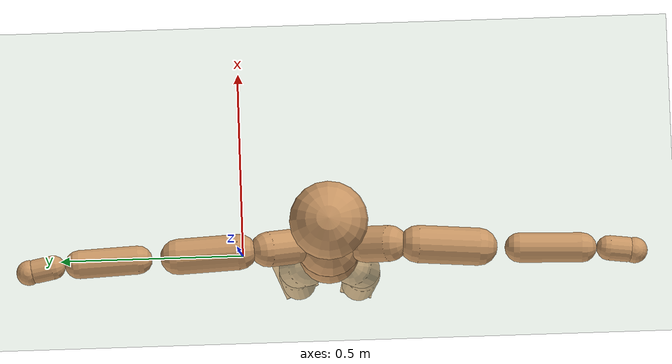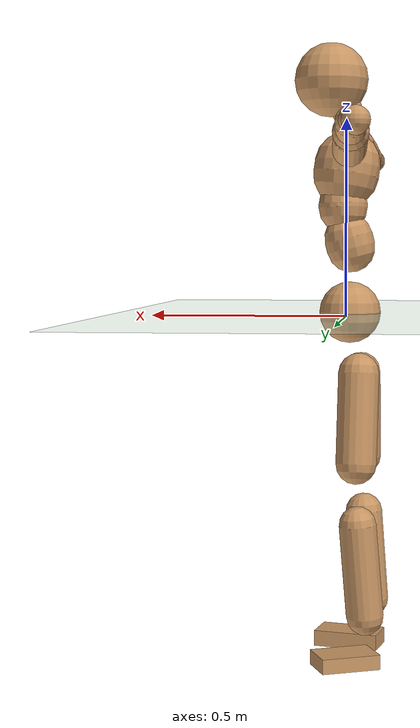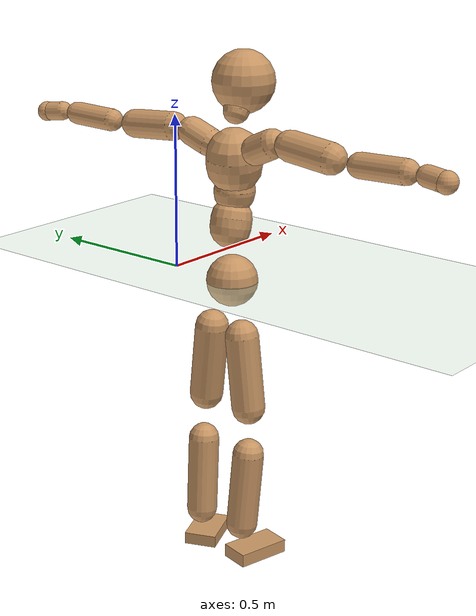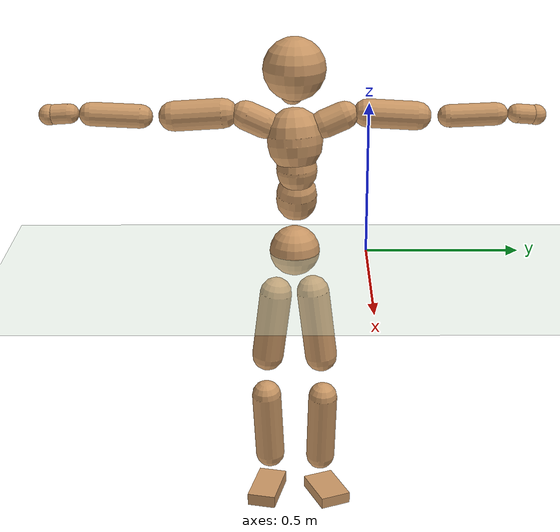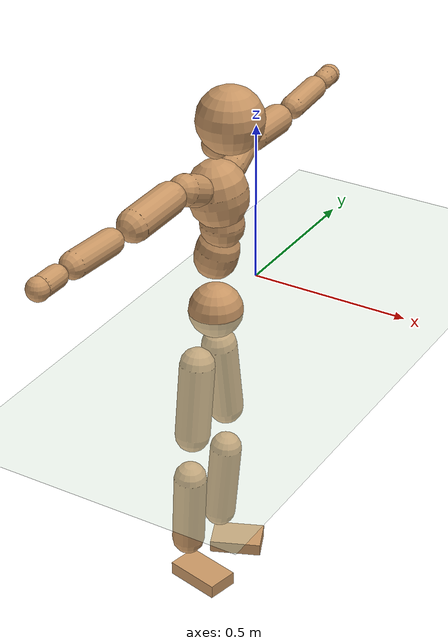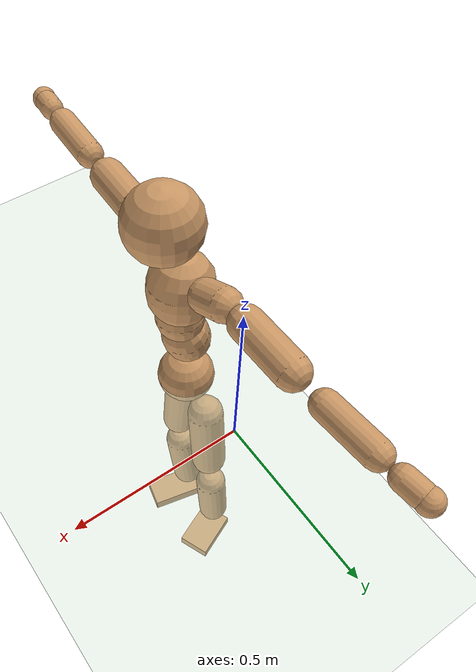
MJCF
<mujoco model="humanoid">
  <compiler coordinate="local" angle="radian"/>
  <default>
    <joint damping="0.0" armature="0.01" stiffness="0.0" limited="true"/>
    <geom conaffinity="1" condim="3" contype="7" margin="0.001" rgba="0.8 0.6 .4 1"/>
  </default>
  <asset>
    <texture type="skybox" builtin="gradient" rgb1=".4 .5 .6" rgb2="0 0 0" width="100" height="100"/>
    <texture builtin="flat" height="1278" mark="cross" markrgb="1 1 1" name="texgeom" random="0.01" rgb1="0.8 0.6 0.4" rgb2="0.8 0.6 0.4" type="cube" width="127"/>
    <texture builtin="checker" height="100" name="texplane" rgb1="0 0 0" rgb2="0.8 0.8 0.8" type="2d" width="100"/>
    <material name="MatPlane" reflectance="0.5" shininess="1" specular="1" texrepeat="60 60" texture="texplane"/>
    <material name="geom" texture="texgeom" texuniform="true"/>
  </asset>
  <worldbody>
    <light cutoff="100" diffuse="1 1 1" dir="-0 0 -1.3" directional="true" exponent="1" pos="0 0 1.3" specular=".1 .1 .1"/>
    <geom conaffinity="1" condim="3" name="floor" pos="0 0 0" rgba="0.8 0.9 0.8 1" size="100 100 .2" type="plane" material="MatPlane"/>
    <body name="Pelvis" pos="0.0006 -0.2349 0.0005">
      <freejoint name="Pelvis"/>
      <geom type="sphere" contype="1" conaffinity="1" density="500" size="0.0829" pos="0.0000 0.0000 0.0000" name="Pelvis"/>
      <body name="L_Hip" pos="-0.0286 0.0517 -0.0809">
        <joint name="L_Hip_x" type="hinge" pos="0 0 0" axis="1 0 0" stiffness="800" damping="80" armature="0.02" range="-180.0000 180.0000"/>
        <joint name="L_Hip_y" type="hinge" pos="0 0 0" axis="0 1 0" stiffness="800" damping="80" armature="0.02" range="-180.0000 180.0000"/>
        <joint name="L_Hip_z" type="hinge" pos="0 0 0" axis="0 0 1" stiffness="800" damping="80" armature="0.02" range="-180.0000 180.0000"/>
        <geom type="capsule" contype="1" conaffinity="1" density="500" fromto="0.0016 0.0097 -0.0802 0.0063 0.0388 -0.3209" size="0.0547" name="L_Hip"/>
        <body name="L_Knee" pos="0.0079 0.0485 -0.4011">
          <joint name="L_Knee_x" type="hinge" pos="0 0 0" axis="1 0 0" stiffness="800" damping="80" armature="0.02" range="-180.0000 180.0000"/>
          <joint name="L_Knee_y" type="hinge" pos="0 0 0" axis="0 1 0" stiffness="800" damping="80" armature="0.02" range="-180.0000 180.0000"/>
          <joint name="L_Knee_z" type="hinge" pos="0 0 0" axis="0 0 1" stiffness="800" damping="80" armature="0.02" range="-180.0000 180.0000"/>
          <geom type="capsule" contype="1" conaffinity="1" density="500" fromto="-0.0067 -0.0023 -0.0831 -0.0269 -0.0093 -0.3323" size="0.0502" name="L_Knee"/>
          <body name="L_Ankle" pos="-0.0336 -0.0116 -0.4154">
            <joint name="L_Ankle_x" type="hinge" pos="0 0 0" axis="1 0 0" stiffness="800" damping="80" armature="0.02" range="-180.0000 180.0000"/>
            <joint name="L_Ankle_y" type="hinge" pos="0 0 0" axis="0 1 0" stiffness="800" damping="80" armature="0.02" range="-180.0000 180.0000"/>
            <joint name="L_Ankle_z" type="hinge" pos="0 0 0" axis="0 0 1" stiffness="800" damping="80" armature="0.02" range="-180.0000 180.0000"/>
            <geom type="box" contype="1" conaffinity="1" density="500" pos="0.0586 0.0247 -0.0301" size="0.0809 0.0534 0.0198" quat="0.9802 0.0000 0.0000 0.1982" name="L_Ankle"/>
            <body name="L_Toe" pos="0.1172 0.0494 -0.0602">
              <joint name="L_Toe_x" type="hinge" pos="0 0 0" axis="1 0 0" stiffness="500" damping="50" armature="0.02" range="-180.0000 180.0000"/>
              <joint name="L_Toe_y" type="hinge" pos="0 0 0" axis="0 1 0" stiffness="500" damping="50" armature="0.02" range="-180.0000 180.0000"/>
              <joint name="L_Toe_z" type="hinge" pos="0 0 0" axis="0 0 1" stiffness="500" damping="50" armature="0.02" range="-180.0000 180.0000"/>
              <geom type="box" contype="1" conaffinity="1" density="500" pos="0.0000 0.0000 0.0325" size="0.001 0.0025 0.0011" quat="0.9793 0.0000 0.0000 0.2023" name="L_Toe"/>
            </body>
          </body>
        </body>
      </body>
      <body name="R_Hip" pos="-0.0269 -0.0539 -0.0886">
        <joint name="R_Hip_x" type="hinge" pos="0 0 0" axis="1 0 0" stiffness="800" damping="80" armature="0.02" range="-180.0000 180.0000"/>
        <joint name="R_Hip_y" type="hinge" pos="0 0 0" axis="0 1 0" stiffness="800" damping="80" armature="0.02" range="-180.0000 180.0000"/>
        <joint name="R_Hip_z" type="hinge" pos="0 0 0" axis="0 0 1" stiffness="800" damping="80" armature="0.02" range="-180.0000 180.0000"/>
        <geom type="capsule" contype="1" conaffinity="1" density="500" fromto="-0.0007 -0.0098 -0.0785 -0.0028 -0.0394 -0.3140" size="0.0541" name="R_Hip"/>
        <body name="R_Knee" pos="-0.0035 -0.0492 -0.3925">
          <joint name="R_Knee_x" type="hinge" pos="0 0 0" axis="1 0 0" stiffness="800" damping="80" armature="0.02" range="-180.0000 180.0000"/>
          <joint name="R_Knee_y" type="hinge" pos="0 0 0" axis="0 1 0" stiffness="800" damping="80" armature="0.02" range="-180.0000 180.0000"/>
          <joint name="R_Knee_z" type="hinge" pos="0 0 0" axis="0 0 1" stiffness="800" damping="80" armature="0.02" range="-180.0000 180.0000"/>
          <geom type="capsule" contype="1" conaffinity="1" density="500" fromto="-0.0061 0.0036 -0.0818 -0.0246 0.0143 -0.3274" size="0.0511" name="R_Knee"/>
          <body name="R_Ankle" pos="-0.0307 0.0179 -0.4092">
            <joint name="R_Ankle_x" type="hinge" pos="0 0 0" axis="1 0 0" stiffness="800" damping="80" armature="0.02" range="-180.0000 180.0000"/>
            <joint name="R_Ankle_y" type="hinge" pos="0 0 0" axis="0 1 0" stiffness="800" damping="80" armature="0.02" range="-180.0000 180.0000"/>
            <joint name="R_Ankle_z" type="hinge" pos="0 0 0" axis="0 0 1" stiffness="800" damping="80" armature="0.02" range="-180.0000 180.0000"/>
            <geom type="box" contype="1" conaffinity="1" density="500" pos="0.0636 -0.0145 -0.0320" size="0.0888 0.0487 0.0217" quat="0.9937 0.0000 0.0000 -0.1117" name="R_Ankle"/>
            <body name="R_Toe" pos="0.1272 -0.029 -0.064">
              <joint name="R_Toe_x" type="hinge" pos="0 0 0" axis="1 0 0" stiffness="500" damping="50" armature="0.02" range="-180.0000 180.0000"/>
              <joint name="R_Toe_y" type="hinge" pos="0 0 0" axis="0 1 0" stiffness="500" damping="50" armature="0.02" range="-180.0000 180.0000"/>
              <joint name="R_Toe_z" type="hinge" pos="0 0 0" axis="0 0 1" stiffness="500" damping="50" armature="0.02" range="-180.0000 180.0000"/>
              <geom type="box" contype="1" conaffinity="1" density="500" pos="0.0000 0.0000 0.0345" size="0.0009 0.0023 0.0012" quat="0.9947 0.0000 0.0000 -0.1026" name="R_Toe"/>
            </body>
          </body>
        </body>
      </body>
      <body name="Torso" pos="-0.0166 0.004 0.1172">
        <joint name="Torso_x" type="hinge" pos="0 0 0" axis="1 0 0" stiffness="1000" damping="100" armature="0.02" range="-180.0000 180.0000"/>
        <joint name="Torso_y" type="hinge" pos="0 0 0" axis="0 1 0" stiffness="1000" damping="100" armature="0.02" range="-180.0000 180.0000"/>
        <joint name="Torso_z" type="hinge" pos="0 0 0" axis="0 0 1" stiffness="1000" damping="100" armature="0.02" range="-180.0000 180.0000"/>
        <geom type="capsule" contype="1" conaffinity="1" density="500" fromto="0.0214 0.0026 0.0846 0.0143 0.0017 0.0564" size="0.0657" name="Torso"/>
        <body name="Spine" pos="0.0357 0.0043 0.1411">
          <joint name="Spine_x" type="hinge" pos="0 0 0" axis="1 0 0" stiffness="1000" damping="100" armature="0.02" range="-180.0000 180.0000"/>
          <joint name="Spine_y" type="hinge" pos="0 0 0" axis="0 1 0" stiffness="1000" damping="100" armature="0.02" range="-180.0000 180.0000"/>
          <joint name="Spine_z" type="hinge" pos="0 0 0" axis="0 0 1" stiffness="1000" damping="100" armature="0.02" range="-180.0000 180.0000"/>
          <geom type="capsule" contype="1" conaffinity="1" density="500" fromto="0.0006 -0.0016 0.0341 0.0004 -0.0011 0.0227" size="0.0657" name="Spine"/>
          <body name="Chest" pos="0.001 -0.0027 0.0568">
            <joint name="Chest_x" type="hinge" pos="0 0 0" axis="1 0 0" stiffness="1000" damping="100" armature="0.02" range="-180.0000 180.0000"/>
            <joint name="Chest_y" type="hinge" pos="0 0 0" axis="0 1 0" stiffness="1000" damping="100" armature="0.02" range="-180.0000 180.0000"/>
            <joint name="Chest_z" type="hinge" pos="0 0 0" axis="0 0 1" stiffness="1000" damping="100" armature="0.02" range="-180.0000 180.0000"/>
            <geom type="capsule" contype="1" conaffinity="1" density="500" fromto="-0.0119 -0.0055 0.0841 -0.0080 -0.0037 0.0561" size="0.0889" name="Chest"/>
            <body name="Neck" pos="-0.0212 -0.014 0.2053">
              <joint name="Neck_x" type="hinge" pos="0 0 0" axis="1 0 0" stiffness="500" damping="50" armature="0.02" range="-180.0000 180.0000"/>
              <joint name="Neck_y" type="hinge" pos="0 0 0" axis="0 1 0" stiffness="500" damping="50" armature="0.02" range="-180.0000 180.0000"/>
              <joint name="Neck_z" type="hinge" pos="0 0 0" axis="0 0 1" stiffness="500" damping="50" armature="0.02" range="-180.0000 180.0000"/>
              <geom type="capsule" contype="1" conaffinity="1" density="500" fromto="0.0107 0.0016 0.0206 0.0427 0.0065 0.0825" size="0.0415" name="Neck"/>
              <body name="Head" pos="0.0534 0.0081 0.1031">
                <joint name="Head_x" type="hinge" pos="0 0 0" axis="1 0 0" stiffness="500" damping="50" armature="0.02" range="-180.0000 180.0000"/>
                <joint name="Head_y" type="hinge" pos="0 0 0" axis="0 1 0" stiffness="500" damping="50" armature="0.02" range="-180.0000 180.0000"/>
                <joint name="Head_z" type="hinge" pos="0 0 0" axis="0 0 1" stiffness="500" damping="50" armature="0.02" range="-180.0000 180.0000"/>
                <geom type="sphere" contype="1" conaffinity="1" density="500" size="0.0991" pos="0.0000 0.0000 0.0000" name="Head"/>
              </body>
            </body>
            <body name="L_Thorax" pos="-0.0181 0.0643 0.1074">
              <joint name="L_Thorax_x" type="hinge" pos="0 0 0" axis="1 0 0" stiffness="500" damping="50" armature="0.02" range="-180.0000 180.0000"/>
              <joint name="L_Thorax_y" type="hinge" pos="0 0 0" axis="0 1 0" stiffness="500" damping="50" armature="0.02" range="-180.0000 180.0000"/>
              <joint name="L_Thorax_z" type="hinge" pos="0 0 0" axis="0 0 1" stiffness="500" damping="50" armature="0.02" range="-180.0000 180.0000"/>
              <geom type="capsule" contype="1" conaffinity="1" density="500" fromto="-0.0023 0.0218 0.0091 -0.0093 0.0874 0.0366" size="0.0456" name="L_Thorax"/>
              <body name="L_Shoulder" pos="-0.0116 0.1092 0.0457">
                <joint name="L_Shoulder_x" type="hinge" pos="0 0 0" axis="1 0 0" stiffness="500" damping="50" armature="0.02" range="-720.0000 720.0000"/>
                <joint name="L_Shoulder_y" type="hinge" pos="0 0 0" axis="0 1 0" stiffness="500" damping="50" armature="0.02" range="-720.0000 720.0000"/>
                <joint name="L_Shoulder_z" type="hinge" pos="0 0 0" axis="0 0 1" stiffness="500" damping="50" armature="0.02" range="-720.0000 720.0000"/>
                <geom type="capsule" contype="1" conaffinity="1" density="500" fromto="-0.0023 0.0523 -0.0036 -0.0092 0.2093 -0.0144" size="0.046" name="L_Shoulder"/>
                <body name="L_Elbow" pos="-0.0115 0.2616 -0.018">
                  <joint name="L_Elbow_x" type="hinge" pos="0 0 0" axis="1 0 0" stiffness="500" damping="50" armature="0.02" range="-720.0000 720.0000"/>
                  <joint name="L_Elbow_y" type="hinge" pos="0 0 0" axis="0 1 0" stiffness="500" damping="50" armature="0.02" range="-720.0000 720.0000"/>
                  <joint name="L_Elbow_z" type="hinge" pos="0 0 0" axis="0 0 1" stiffness="500" damping="50" armature="0.02" range="-720.0000 720.0000"/>
                  <geom type="capsule" contype="1" conaffinity="1" density="500" fromto="-0.0024 0.0504 0.0016 -0.0097 0.2016 0.0066" size="0.0367" name="L_Elbow"/>
                  <body name="L_Wrist" pos="-0.0121 0.252 0.0082">
                    <joint name="L_Wrist_x" type="hinge" pos="0 0 0" axis="1 0 0" stiffness="300" damping="30" armature="0.02" range="-180.0000 180.0000"/>
                    <joint name="L_Wrist_y" type="hinge" pos="0 0 0" axis="0 1 0" stiffness="300" damping="30" armature="0.02" range="-180.0000 180.0000"/>
                    <joint name="L_Wrist_z" type="hinge" pos="0 0 0" axis="0 0 1" stiffness="300" damping="30" armature="0.02" range="-180.0000 180.0000"/>
                    <geom type="capsule" contype="1" conaffinity="1" density="500" fromto="-0.0029 0.0159 -0.0019 -0.0116 0.0635 -0.0076" size="0.031" name="L_Wrist"/>
                    <body name="L_Hand" pos="-0.0145 0.0794 -0.0095">
                      <joint name="L_Hand_x" type="hinge" pos="0 0 0" axis="1 0 0" stiffness="300" damping="30" armature="0.02" range="-180.0000 180.0000"/>
                      <joint name="L_Hand_y" type="hinge" pos="0 0 0" axis="0 1 0" stiffness="300" damping="30" armature="0.02" range="-180.0000 180.0000"/>
                      <joint name="L_Hand_z" type="hinge" pos="0 0 0" axis="0 0 1" stiffness="300" damping="30" armature="0.02" range="-180.0000 180.0000"/>
                      <geom type="sphere" contype="1" conaffinity="1" density="500" size="0.0326" pos="0.0000 0.0000 0.0000" name="L_Hand"/>
                    </body>
                  </body>
                </body>
              </body>
            </body>
            <body name="R_Thorax" pos="-0.0205 -0.078 0.1078">
              <joint name="R_Thorax_x" type="hinge" pos="0 0 0" axis="1 0 0" stiffness="500" damping="50" armature="0.02" range="-180.0000 180.0000"/>
              <joint name="R_Thorax_y" type="hinge" pos="0 0 0" axis="0 1 0" stiffness="500" damping="50" armature="0.02" range="-180.0000 180.0000"/>
              <joint name="R_Thorax_z" type="hinge" pos="0 0 0" axis="0 0 1" stiffness="500" damping="50" armature="0.02" range="-180.0000 180.0000"/>
              <geom type="capsule" contype="1" conaffinity="1" density="500" fromto="-0.0004 -0.0206 0.0094 -0.0016 -0.0825 0.0377" size="0.0469" name="R_Thorax"/>
              <body name="R_Shoulder" pos="-0.002 -0.1032 0.0472">
                <joint name="R_Shoulder_x" type="hinge" pos="0 0 0" axis="1 0 0" stiffness="500" damping="50" armature="0.02" range="-720.0000 720.0000"/>
                <joint name="R_Shoulder_y" type="hinge" pos="0 0 0" axis="0 1 0" stiffness="500" damping="50" armature="0.02" range="-720.0000 720.0000"/>
                <joint name="R_Shoulder_z" type="hinge" pos="0 0 0" axis="0 0 1" stiffness="500" damping="50" armature="0.02" range="-720.0000 720.0000"/>
                <geom type="capsule" contype="1" conaffinity="1" density="500" fromto="-0.0037 -0.0520 -0.0043 -0.0149 -0.2081 -0.0172" size="0.0485" name="R_Shoulder"/>
                <body name="R_Elbow" pos="-0.0187 -0.2602 -0.0215">
                  <joint name="R_Elbow_x" type="hinge" pos="0 0 0" axis="1 0 0" stiffness="500" damping="50" armature="0.02" range="-720.0000 720.0000"/>
                  <joint name="R_Elbow_y" type="hinge" pos="0 0 0" axis="0 1 0" stiffness="500" damping="50" armature="0.02" range="-720.0000 720.0000"/>
                  <joint name="R_Elbow_z" type="hinge" pos="0 0 0" axis="0 0 1" stiffness="500" damping="50" armature="0.02" range="-720.0000 720.0000"/>
                  <geom type="capsule" contype="1" conaffinity="1" density="500" fromto="-0.0016 -0.0529 0.0021 -0.0066 -0.2118 0.0084" size="0.0384" name="R_Elbow"/>
                  <body name="R_Wrist" pos="-0.0082 -0.2647 0.0104">
                    <joint name="R_Wrist_x" type="hinge" pos="0 0 0" axis="1 0 0" stiffness="300" damping="30" armature="0.02" range="-180.0000 180.0000"/>
                    <joint name="R_Wrist_y" type="hinge" pos="0 0 0" axis="0 1 0" stiffness="300" damping="30" armature="0.02" range="-180.0000 180.0000"/>
                    <joint name="R_Wrist_z" type="hinge" pos="0 0 0" axis="0 0 1" stiffness="300" damping="30" armature="0.02" range="-180.0000 180.0000"/>
                    <geom type="capsule" contype="1" conaffinity="1" density="500" fromto="-0.0019 -0.0166 -0.0015 -0.0076 -0.0662 -0.0061" size="0.0322" name="R_Wrist"/>
                    <body name="R_Hand" pos="-0.0095 -0.0828 -0.0076">
                      <joint name="R_Hand_x" type="hinge" pos="0 0 0" axis="1 0 0" stiffness="300" damping="30" armature="0.02" range="-180.0000 180.0000"/>
                      <joint name="R_Hand_y" type="hinge" pos="0 0 0" axis="0 1 0" stiffness="300" damping="30" armature="0.02" range="-180.0000 180.0000"/>
                      <joint name="R_Hand_z" type="hinge" pos="0 0 0" axis="0 0 1" stiffness="300" damping="30" armature="0.02" range="-180.0000 180.0000"/>
                      <geom type="sphere" contype="1" conaffinity="1" density="500" size="0.0336" pos="0.0000 0.0000 0.0000" name="R_Hand"/>
                    </body>
                  </body>
                </body>
              </body>
            </body>
          </body>
        </body>
      </body>
    </body>
  </worldbody>
  <actuator>
    <motor name="L_Hip_x" joint="L_Hip_x" gear="500"/>
    <motor name="L_Hip_y" joint="L_Hip_y" gear="500"/>
    <motor name="L_Hip_z" joint="L_Hip_z" gear="500"/>
    <motor name="L_Knee_x" joint="L_Knee_x" gear="500"/>
    <motor name="L_Knee_y" joint="L_Knee_y" gear="500"/>
    <motor name="L_Knee_z" joint="L_Knee_z" gear="500"/>
    <motor name="L_Ankle_x" joint="L_Ankle_x" gear="500"/>
    <motor name="L_Ankle_y" joint="L_Ankle_y" gear="500"/>
    <motor name="L_Ankle_z" joint="L_Ankle_z" gear="500"/>
    <motor name="L_Toe_x" joint="L_Toe_x" gear="500"/>
    <motor name="L_Toe_y" joint="L_Toe_y" gear="500"/>
    <motor name="L_Toe_z" joint="L_Toe_z" gear="500"/>
    <motor name="R_Hip_x" joint="R_Hip_x" gear="500"/>
    <motor name="R_Hip_y" joint="R_Hip_y" gear="500"/>
    <motor name="R_Hip_z" joint="R_Hip_z" gear="500"/>
    <motor name="R_Knee_x" joint="R_Knee_x" gear="500"/>
    <motor name="R_Knee_y" joint="R_Knee_y" gear="500"/>
    <motor name="R_Knee_z" joint="R_Knee_z" gear="500"/>
    <motor name="R_Ankle_x" joint="R_Ankle_x" gear="500"/>
    <motor name="R_Ankle_y" joint="R_Ankle_y" gear="500"/>
    <motor name="R_Ankle_z" joint="R_Ankle_z" gear="500"/>
    <motor name="R_Toe_x" joint="R_Toe_x" gear="500"/>
    <motor name="R_Toe_y" joint="R_Toe_y" gear="500"/>
    <motor name="R_Toe_z" joint="R_Toe_z" gear="500"/>
    <motor name="Torso_x" joint="Torso_x" gear="500"/>
    <motor name="Torso_y" joint="Torso_y" gear="500"/>
    <motor name="Torso_z" joint="Torso_z" gear="500"/>
    <motor name="Spine_x" joint="Spine_x" gear="500"/>
    <motor name="Spine_y" joint="Spine_y" gear="500"/>
    <motor name="Spine_z" joint="Spine_z" gear="500"/>
    <motor name="Chest_x" joint="Chest_x" gear="500"/>
    <motor name="Chest_y" joint="Chest_y" gear="500"/>
    <motor name="Chest_z" joint="Chest_z" gear="500"/>
    <motor name="Neck_x" joint="Neck_x" gear="500"/>
    <motor name="Neck_y" joint="Neck_y" gear="500"/>
    <motor name="Neck_z" joint="Neck_z" gear="500"/>
    <motor name="Head_x" joint="Head_x" gear="500"/>
    <motor name="Head_y" joint="Head_y" gear="500"/>
    <motor name="Head_z" joint="Head_z" gear="500"/>
    <motor name="L_Thorax_x" joint="L_Thorax_x" gear="500"/>
    <motor name="L_Thorax_y" joint="L_Thorax_y" gear="500"/>
    <motor name="L_Thorax_z" joint="L_Thorax_z" gear="500"/>
    <motor name="L_Shoulder_x" joint="L_Shoulder_x" gear="500"/>
    <motor name="L_Shoulder_y" joint="L_Shoulder_y" gear="500"/>
    <motor name="L_Shoulder_z" joint="L_Shoulder_z" gear="500"/>
    <motor name="L_Elbow_x" joint="L_Elbow_x" gear="500"/>
    <motor name="L_Elbow_y" joint="L_Elbow_y" gear="500"/>
    <motor name="L_Elbow_z" joint="L_Elbow_z" gear="500"/>
    <motor name="L_Wrist_x" joint="L_Wrist_x" gear="500"/>
    <motor name="L_Wrist_y" joint="L_Wrist_y" gear="500"/>
    <motor name="L_Wrist_z" joint="L_Wrist_z" gear="500"/>
    <motor name="L_Hand_x" joint="L_Hand_x" gear="500"/>
    <motor name="L_Hand_y" joint="L_Hand_y" gear="500"/>
    <motor name="L_Hand_z" joint="L_Hand_z" gear="500"/>
    <motor name="R_Thorax_x" joint="R_Thorax_x" gear="500"/>
    <motor name="R_Thorax_y" joint="R_Thorax_y" gear="500"/>
    <motor name="R_Thorax_z" joint="R_Thorax_z" gear="500"/>
    <motor name="R_Shoulder_x" joint="R_Shoulder_x" gear="500"/>
    <motor name="R_Shoulder_y" joint="R_Shoulder_y" gear="500"/>
    <motor name="R_Shoulder_z" joint="R_Shoulder_z" gear="500"/>
    <motor name="R_Elbow_x" joint="R_Elbow_x" gear="500"/>
    <motor name="R_Elbow_y" joint="R_Elbow_y" gear="500"/>
    <motor name="R_Elbow_z" joint="R_Elbow_z" gear="500"/>
    <motor name="R_Wrist_x" joint="R_Wrist_x" gear="500"/>
    <motor name="R_Wrist_y" joint="R_Wrist_y" gear="500"/>
    <motor name="R_Wrist_z" joint="R_Wrist_z" gear="500"/>
    <motor name="R_Hand_x" joint="R_Hand_x" gear="500"/>
    <motor name="R_Hand_y" joint="R_Hand_y" gear="500"/>
    <motor name="R_Hand_z" joint="R_Hand_z" gear="500"/>
  </actuator>
  <contact>
    <exclude body1="Torso" body2="Chest"/>
    <exclude body1="Head" body2="Chest"/>
    <exclude body1="R_Knee" body2="R_Toe"/>
    <exclude body1="R_Knee" body2="L_Ankle"/>
    <exclude body1="R_Knee" body2="L_Toe"/>
    <exclude body1="L_Knee" body2="L_Toe"/>
    <exclude body1="L_Knee" body2="R_Ankle"/>
    <exclude body1="L_Knee" body2="R_Toe"/>
    <exclude body1="L_Shoulder" body2="Chest"/>
    <exclude body1="R_Shoulder" body2="Chest"/>
  </contact>
  <sensor/>
  <size njmax="700" nconmax="700"/>
</mujoco>
